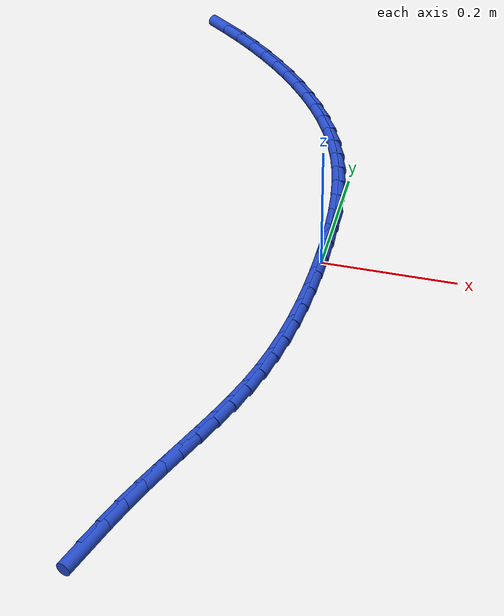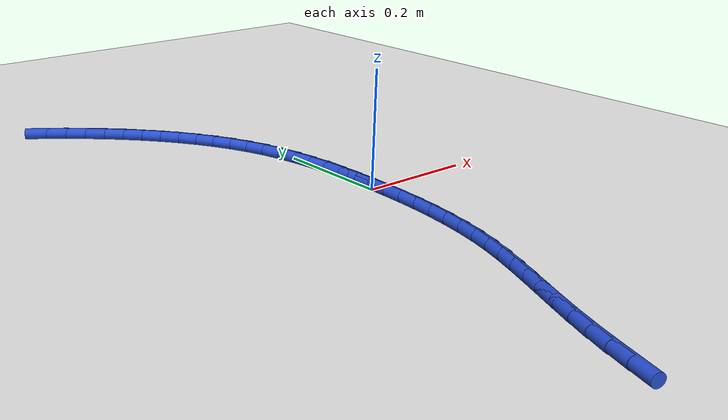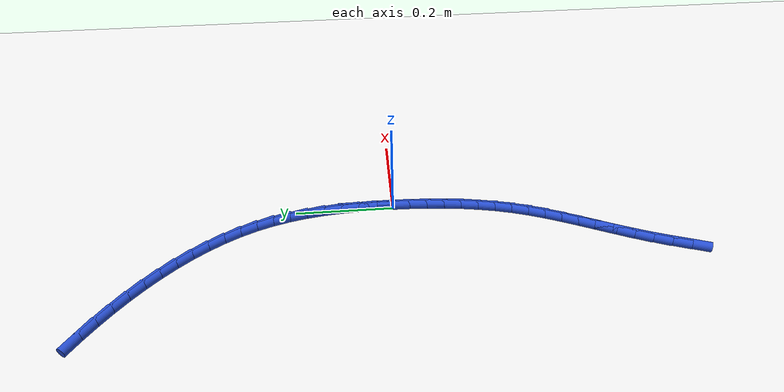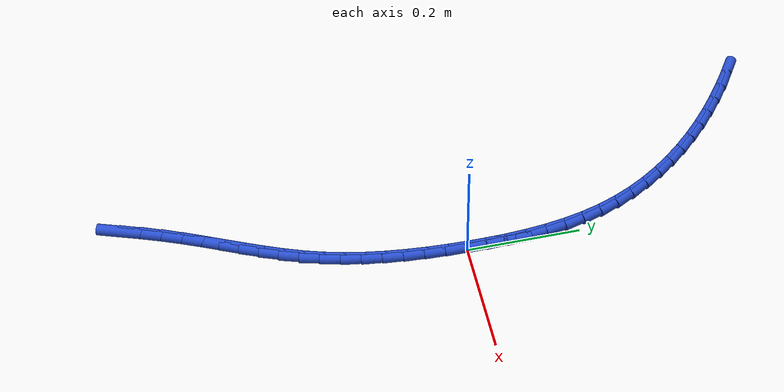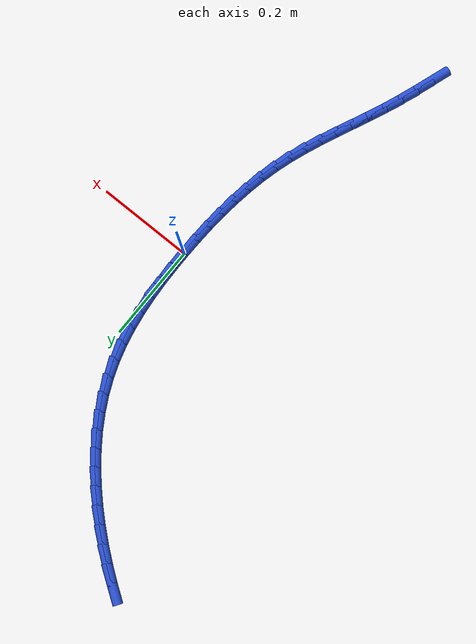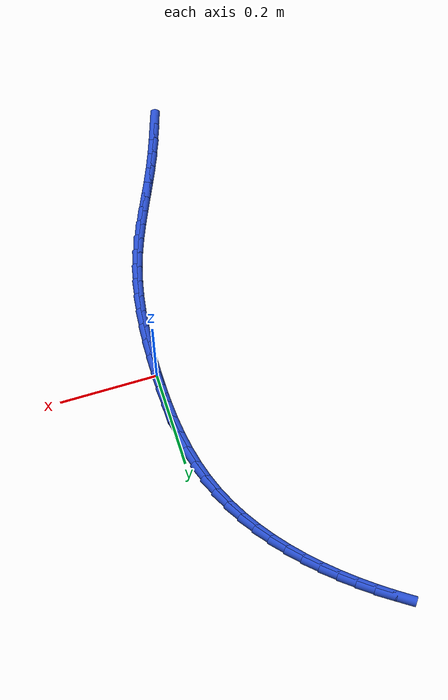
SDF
<sdf version="1.6">
 <world name="default">
  <model name="ground_plane">
   <static>1</static>
   <link name="link">
    <collision name="collision">
     <geometry><plane><normal>0 0 1</normal><size>100 100</size></plane></geometry>
     <surface><friction><ode><mu>100</mu><mu2>50</mu2></ode></friction></surface>
    </collision>
    <visual name="visual">
     <cast_shadows>0</cast_shadows>
     <geometry><plane><normal>0 0 1</normal><size>100 100</size></plane></geometry>
     <material>
      <script><uri>file://media/materials/scripts/gazebo.material</uri><name>Gazebo/WhiteGlow</name></script>
     </material>
    </visual>
   </link>
  </model>
  <model name="line">
   <link name="link_0">
    <pose>-1.9081958235744878e-17 1.3877787807814457e-17 0.01 0 1.57 -1.569150691324924</pose>
    <collision name="collision">
     <geometry><cylinder><radius>0.01</radius><length>0.08</length></cylinder></geometry>
    </collision>
    <visual name="visual">
     <material>
      <script><name>Gazebo/Blue</name><uri>file://media/materials/scripts/gazebo.material</uri></script>
     </material>
     <geometry><cylinder><radius>0.01</radius><length>0.08</length></cylinder></geometry>
    </visual>
   </link>
   <link name="link_1">
    <pose>-5.93490348842549e-05 0.03606447624182651 0.01 0 1.57 -1.5408540072571866</pose>
    <collision name="collision">
     <geometry><cylinder><radius>0.01</radius><length>0.08</length></cylinder></geometry>
    </collision>
    <visual name="visual">
     <material>
      <script><name>Gazebo/Blue</name><uri>file://media/materials/scripts/gazebo.material</uri></script>
     </material>
     <geometry><cylinder><radius>0.01</radius><length>0.08</length></cylinder></geometry>
    </visual>
   </link>
   <link name="link_2">
    <pose>-0.0011372189621542512 0.07205192831365248 0.01 0 1.57 -1.5059572041774045</pose>
    <collision name="collision">
     <geometry><cylinder><radius>0.01</radius><length>0.08</length></cylinder></geometry>
    </collision>
    <visual name="visual">
     <material>
      <script><name>Gazebo/Blue</name><uri>file://media/materials/scripts/gazebo.material</uri></script>
     </material>
     <geometry><cylinder><radius>0.01</radius><length>0.08</length></cylinder></geometry>
    </visual>
   </link>
   <link name="link_3">
    <pose>-0.003459952128827188 0.10782473260817574 0.01 0 1.57 -1.4640918692509997</pose>
    <collision name="collision">
     <geometry><cylinder><radius>0.01</radius><length>0.08</length></cylinder></geometry>
    </collision>
    <visual name="visual">
     <material>
      <script><name>Gazebo/Blue</name><uri>file://media/materials/scripts/gazebo.material</uri></script>
     </material>
     <geometry><cylinder><radius>0.01</radius><length>0.08</length></cylinder></geometry>
    </visual>
   </link>
   <link name="link_4">
    <pose>-0.007253890881920242 0.14324526551809405 0.01 0 1.57 -1.4148614530525538</pose>
    <collision name="collision">
     <geometry><cylinder><radius>0.01</radius><length>0.08</length></cylinder></geometry>
    </collision>
    <visual name="visual">
     <material>
      <script><name>Gazebo/Blue</name><uri>file://media/materials/scripts/gazebo.material</uri></script>
     </material>
     <geometry><cylinder><radius>0.01</radius><length>0.08</length></cylinder></geometry>
    </visual>
   </link>
   <link name="link_5">
    <pose>-0.012745377568450594 0.1781759034361053 0.01 0 1.57 -1.3579001338973513</pose>
    <collision name="collision">
     <geometry><cylinder><radius>0.01</radius><length>0.08</length></cylinder></geometry>
    </collision>
    <visual name="visual">
     <material>
      <script><name>Gazebo/Blue</name><uri>file://media/materials/scripts/gazebo.material</uri></script>
     </material>
     <geometry><cylinder><radius>0.01</radius><length>0.08</length></cylinder></geometry>
    </visual>
   </link>
   <link name="link_6">
    <pose>-0.020160754535435435 0.21247902275490732 0.01 0 1.57 -1.2929562519048643</pose>
    <collision name="collision">
     <geometry><cylinder><radius>0.01</radius><length>0.08</length></cylinder></geometry>
    </collision>
    <visual name="visual">
     <material>
      <script><name>Gazebo/Blue</name><uri>file://media/materials/scripts/gazebo.material</uri></script>
     </material>
     <geometry><cylinder><radius>0.01</radius><length>0.08</length></cylinder></geometry>
    </visual>
   </link>
   <link name="link_7">
    <pose>-0.02972636412989191 0.2460169998671978 0.01 0 1.57 -1.2204378760313082</pose>
    <collision name="collision">
     <geometry><cylinder><radius>0.01</radius><length>0.08</length></cylinder></geometry>
    </collision>
    <visual name="visual">
     <material>
      <script><name>Gazebo/Blue</name><uri>file://media/materials/scripts/gazebo.material</uri></script>
     </material>
     <geometry><cylinder><radius>0.01</radius><length>0.08</length></cylinder></geometry>
    </visual>
   </link>
   <link name="link_8">
    <pose>-0.041654253718880825 0.27865727076518504 0.01 0 1.57 -1.1468807612114151</pose>
    <collision name="collision">
     <geometry><cylinder><radius>0.01</radius><length>0.08</length></cylinder></geometry>
    </collision>
    <visual name="visual">
     <material>
      <script><name>Gazebo/Blue</name><uri>file://media/materials/scripts/gazebo.material</uri></script>
     </material>
     <geometry><cylinder><radius>0.01</radius><length>0.08</length></cylinder></geometry>
    </visual>
   </link>
   <link name="link_9">
    <pose>-0.05595181602787426 0.3103397073960449 0.01 0 1.57 -1.0773373245273545</pose>
    <collision name="collision">
     <geometry><cylinder><radius>0.01</radius><length>0.08</length></cylinder></geometry>
    </collision>
    <visual name="visual">
     <material>
      <script><name>Gazebo/Blue</name><uri>file://media/materials/scripts/gazebo.material</uri></script>
     </material>
     <geometry><cylinder><radius>0.01</radius><length>0.08</length></cylinder></geometry>
    </visual>
   </link>
   <link name="link_10">
    <pose>-0.07247349649613222 0.341058316236473 0.01 0 1.57 -1.012130288703366</pose>
    <collision name="collision">
     <geometry><cylinder><radius>0.01</radius><length>0.08</length></cylinder></geometry>
    </collision>
    <visual name="visual">
     <material>
      <script><name>Gazebo/Blue</name><uri>file://media/materials/scripts/gazebo.material</uri></script>
     </material>
     <geometry><cylinder><radius>0.01</radius><length>0.08</length></cylinder></geometry>
    </visual>
   </link>
   <link name="link_11">
    <pose>-0.09107006279133989 0.37080840548246186 0.01 0 1.57 -0.9512995171308045</pose>
    <collision name="collision">
     <geometry><cylinder><radius>0.01</radius><length>0.08</length></cylinder></geometry>
    </collision>
    <visual name="visual">
     <material>
      <script><name>Gazebo/Blue</name><uri>file://media/materials/scripts/gazebo.material</uri></script>
     </material>
     <geometry><cylinder><radius>0.01</radius><length>0.08</length></cylinder></geometry>
    </visual>
   </link>
   <link name="link_12">
    <pose>-0.1115922825811826 0.3995852833300044 0.01 0 1.57 -0.894752493359129</pose>
    <collision name="collision">
     <geometry><cylinder><radius>0.01</radius><length>0.08</length></cylinder></geometry>
    </collision>
    <visual name="visual">
     <material>
      <script><name>Gazebo/Blue</name><uri>file://media/materials/scripts/gazebo.material</uri></script>
     </material>
     <geometry><cylinder><radius>0.01</radius><length>0.08</length></cylinder></geometry>
    </visual>
   </link>
   <link name="link_13">
    <pose>-0.13389092353334547 0.42738425797509294 0.01 0 1.57 -0.8423020565817934</pose>
    <collision name="collision">
     <geometry><cylinder><radius>0.01</radius><length>0.08</length></cylinder></geometry>
    </collision>
    <visual name="visual">
     <material>
      <script><name>Gazebo/Blue</name><uri>file://media/materials/scripts/gazebo.material</uri></script>
     </material>
     <geometry><cylinder><radius>0.01</radius><length>0.08</length></cylinder></geometry>
    </visual>
   </link>
   <link name="link_14">
    <pose>-0.15781675331551376 0.4542006376137204 0.01 0 1.57 -0.7936994102972715</pose>
    <collision name="collision">
     <geometry><cylinder><radius>0.01</radius><length>0.08</length></cylinder></geometry>
    </collision>
    <visual name="visual">
     <material>
      <script><name>Gazebo/Blue</name><uri>file://media/materials/scripts/gazebo.material</uri></script>
     </material>
     <geometry><cylinder><radius>0.01</radius><length>0.08</length></cylinder></geometry>
    </visual>
   </link>
   <link name="link_15">
    <pose>-0.1832205395953728 0.48002973044187947 0.01 0 1.57 -0.7486605788193607</pose>
    <collision name="collision">
     <geometry><cylinder><radius>0.01</radius><length>0.08</length></cylinder></geometry>
    </collision>
    <visual name="visual">
     <material>
      <script><name>Gazebo/Blue</name><uri>file://media/materials/scripts/gazebo.material</uri></script>
     </material>
     <geometry><cylinder><radius>0.01</radius><length>0.08</length></cylinder></geometry>
    </visual>
   </link>
   <link name="link_16">
    <pose>-0.20995305004060769 0.5048668446555626 0.01 0 1.57 -0.7068861418542753</pose>
    <collision name="collision">
     <geometry><cylinder><radius>0.01</radius><length>0.08</length></cylinder></geometry>
    </collision>
    <visual name="visual">
     <material>
      <script><name>Gazebo/Blue</name><uri>file://media/materials/scripts/gazebo.material</uri></script>
     </material>
     <geometry><cylinder><radius>0.01</radius><length>0.08</length></cylinder></geometry>
    </visual>
   </link>
   <link name="link_17">
    <pose>-0.23786505231890365 0.5287072884507623 0.01 0 1.57 -0.668074988446682</pose>
    <collision name="collision">
     <geometry><cylinder><radius>0.01</radius><length>0.08</length></cylinder></geometry>
    </collision>
    <visual name="visual">
     <material>
      <script><name>Gazebo/Blue</name><uri>file://media/materials/scripts/gazebo.material</uri></script>
     </material>
     <geometry><cylinder><radius>0.01</radius><length>0.08</length></cylinder></geometry>
    </visual>
   </link>
   <link name="link_18">
    <pose>-0.266807314097946 0.5515463700234716 0.01 0 1.57 -0.6319331916607651</pose>
    <collision name="collision">
     <geometry><cylinder><radius>0.01</radius><length>0.08</length></cylinder></geometry>
    </collision>
    <visual name="visual">
     <material>
      <script><name>Gazebo/Blue</name><uri>file://media/materials/scripts/gazebo.material</uri></script>
     </material>
     <geometry><cylinder><radius>0.01</radius><length>0.08</length></cylinder></geometry>
    </visual>
   </link>
   <link name="link_19">
    <pose>-0.29663060304541994 0.5733793975696829 0.01 0 1.57 -0.5981791291737039</pose>
    <collision name="collision">
     <geometry><cylinder><radius>0.01</radius><length>0.08</length></cylinder></geometry>
    </collision>
    <visual name="visual">
     <material>
      <script><name>Gazebo/Blue</name><uri>file://media/materials/scripts/gazebo.material</uri></script>
     </material>
     <geometry><cylinder><radius>0.01</radius><length>0.08</length></cylinder></geometry>
    </visual>
   </link>
   <link name="link_223">
    <pose>-0.16189482674023287 -0.577753472587893 0.01 0 1.57 1.2386802877184837</pose>
    <collision name="collision">
     <geometry><cylinder><radius>0.01</radius><length>0.08</length></cylinder></geometry>
    </collision>
    <visual name="visual">
     <material>
      <script><name>Gazebo/Blue</name><uri>file://media/materials/scripts/gazebo.material</uri></script>
     </material>
     <geometry><cylinder><radius>0.01</radius><length>0.08</length></cylinder></geometry>
    </visual>
   </link>
   <link name="link_224">
    <pose>-0.14970263081702745 -0.5424025937167696 0.01 0 1.57 1.2187836564489156</pose>
    <collision name="collision">
     <geometry><cylinder><radius>0.01</radius><length>0.08</length></cylinder></geometry>
    </collision>
    <visual name="visual">
     <material>
      <script><name>Gazebo/Blue</name><uri>file://media/materials/scripts/gazebo.material</uri></script>
     </material>
     <geometry><cylinder><radius>0.01</radius><length>0.08</length></cylinder></geometry>
    </visual>
   </link>
   <link name="link_225">
    <pose>-0.1369287657236361 -0.5076258943485297 0.01 0 1.57 1.1887222061145388</pose>
    <collision name="collision">
     <geometry><cylinder><radius>0.01</radius><length>0.08</length></cylinder></geometry>
    </collision>
    <visual name="visual">
     <material>
      <script><name>Gazebo/Blue</name><uri>file://media/materials/scripts/gazebo.material</uri></script>
     </material>
     <geometry><cylinder><radius>0.01</radius><length>0.08</length></cylinder></geometry>
    </visual>
   </link>
   <link name="link_226">
    <pose>-0.1233005277651807 -0.4737095953103721 0.01 0 1.57 1.1628952703857232</pose>
    <collision name="collision">
     <geometry><cylinder><radius>0.01</radius><length>0.08</length></cylinder></geometry>
    </collision>
    <visual name="visual">
     <material>
      <script><name>Gazebo/Blue</name><uri>file://media/materials/scripts/gazebo.material</uri></script>
     </material>
     <geometry><cylinder><radius>0.01</radius><length>0.08</length></cylinder></geometry>
    </visual>
   </link>
   <link name="link_227">
    <pose>-0.10898910525994407 -0.4405918842228995 0.01 0 1.57 1.1488261639098358</pose>
    <collision name="collision">
     <geometry><cylinder><radius>0.01</radius><length>0.08</length></cylinder></geometry>
    </collision>
    <visual name="visual">
     <material>
      <script><name>Gazebo/Blue</name><uri>file://media/materials/scripts/gazebo.material</uri></script>
     </material>
     <geometry><cylinder><radius>0.01</radius><length>0.08</length></cylinder></geometry>
    </visual>
   </link>
   <link name="link_228">
    <pose>-0.09437751965690808 -0.40804486109631793 0.01 0 1.57 1.147037677470216</pose>
    <collision name="collision">
     <geometry><cylinder><radius>0.01</radius><length>0.08</length></cylinder></geometry>
    </collision>
    <visual name="visual">
     <material>
      <script><name>Gazebo/Blue</name><uri>file://media/materials/scripts/gazebo.material</uri></script>
     </material>
     <geometry><cylinder><radius>0.01</radius><length>0.08</length></cylinder></geometry>
    </visual>
   </link>
   <link name="link_229">
    <pose>-0.07985010085052696 -0.3758396000551223 0.01 0 1.57 1.1579024986462323</pose>
    <collision name="collision">
     <geometry><cylinder><radius>0.01</radius><length>0.08</length></cylinder></geometry>
    </collision>
    <visual name="visual">
     <material>
      <script><name>Gazebo/Blue</name><uri>file://media/materials/scripts/gazebo.material</uri></script>
     </material>
     <geometry><cylinder><radius>0.01</radius><length>0.08</length></cylinder></geometry>
    </visual>
   </link>
   <link name="link_230">
    <pose>-0.06579117873525456 -0.3437471752238069 0.01 0 1.57 1.1816830261613225</pose>
    <collision name="collision">
     <geometry><cylinder><radius>0.01</radius><length>0.08</length></cylinder></geometry>
    </collision>
    <visual name="visual">
     <material>
      <script><name>Gazebo/Blue</name><uri>file://media/materials/scripts/gazebo.material</uri></script>
     </material>
     <geometry><cylinder><radius>0.01</radius><length>0.08</length></cylinder></geometry>
    </visual>
   </link>
   <link name="link_231">
    <pose>-0.05258508320554585 -0.3115386607268682 0.01 0 1.57 1.2184678619212044</pose>
    <collision name="collision">
     <geometry><cylinder><radius>0.01</radius><length>0.08</length></cylinder></geometry>
    </collision>
    <visual name="visual">
     <material>
      <script><name>Gazebo/Blue</name><uri>file://media/materials/scripts/gazebo.material</uri></script>
     </material>
     <geometry><cylinder><radius>0.01</radius><length>0.08</length></cylinder></geometry>
    </visual>
   </link>
   <link name="link_232">
    <pose>-0.04061614415585471 -0.27898513068880076 0.01 0 1.57 1.2678767253729</pose>
    <collision name="collision">
     <geometry><cylinder><radius>0.01</radius><length>0.08</length></cylinder></geometry>
    </collision>
    <visual name="visual">
     <material>
      <script><name>Gazebo/Blue</name><uri>file://media/materials/scripts/gazebo.material</uri></script>
     </material>
     <geometry><cylinder><radius>0.01</radius><length>0.08</length></cylinder></geometry>
    </visual>
   </link>
   <link name="link_233">
    <pose>-0.03026351754661626 -0.2458607667497954 0.01 0 1.57 1.3223564069434588</pose>
    <collision name="collision">
     <geometry><cylinder><radius>0.01</radius><length>0.08</length></cylinder></geometry>
    </collision>
    <visual name="visual">
     <material>
      <script><name>Gazebo/Blue</name><uri>file://media/materials/scripts/gazebo.material</uri></script>
     </material>
     <geometry><cylinder><radius>0.01</radius><length>0.08</length></cylinder></geometry>
    </visual>
   </link>
   <link name="link_234">
    <pose>-0.02169119122595221 -0.21206898263607654 0.01 0 1.57 1.3722998600019587</pose>
    <collision name="collision">
     <geometry><cylinder><radius>0.01</radius><length>0.08</length></cylinder></geometry>
    </collision>
    <visual name="visual">
     <material>
      <script><name>Gazebo/Blue</name><uri>file://media/materials/scripts/gazebo.material</uri></script>
     </material>
     <geometry><cylinder><radius>0.01</radius><length>0.08</length></cylinder></geometry>
    </visual>
   </link>
   <link name="link_235">
    <pose>-0.014775242389906759 -0.17768611404524753 0.01 0 1.57 1.417122314017017</pose>
    <collision name="collision">
     <geometry><cylinder><radius>0.01</radius><length>0.08</length></cylinder></geometry>
    </collision>
    <visual name="visual">
     <material>
      <script><name>Gazebo/Blue</name><uri>file://media/materials/scripts/gazebo.material</uri></script>
     </material>
     <geometry><cylinder><radius>0.01</radius><length>0.08</length></cylinder></geometry>
    </visual>
   </link>
   <link name="link_236">
    <pose>-0.009371637881938235 -0.1428005751506099 0.01 0 1.57 1.4569754880002448</pose>
    <collision name="collision">
     <geometry><cylinder><radius>0.01</radius><length>0.08</length></cylinder></geometry>
    </collision>
    <visual name="visual">
     <material>
      <script><name>Gazebo/Blue</name><uri>file://media/materials/scripts/gazebo.material</uri></script>
     </material>
     <geometry><cylinder><radius>0.01</radius><length>0.08</length></cylinder></geometry>
    </visual>
   </link>
   <link name="link_237">
    <pose>-0.005336344545504968 -0.10750078012546506 0.01 0 1.57 1.492055185084724</pose>
    <collision name="collision">
     <geometry><cylinder><radius>0.01</radius><length>0.08</length></cylinder></geometry>
    </collision>
    <visual name="visual">
     <material>
      <script><name>Gazebo/Blue</name><uri>file://media/materials/scripts/gazebo.material</uri></script>
     </material>
     <geometry><cylinder><radius>0.01</radius><length>0.08</length></cylinder></geometry>
    </visual>
   </link>
   <link name="link_238">
    <pose>-0.002525329224065236 -0.07187514314311341 0.01 0 1.57 1.5225732134405239</pose>
    <collision name="collision">
     <geometry><cylinder><radius>0.01</radius><length>0.08</length></cylinder></geometry>
    </collision>
    <visual name="visual">
     <material>
      <script><name>Gazebo/Blue</name><uri>file://media/materials/scripts/gazebo.material</uri></script>
     </material>
     <geometry><cylinder><radius>0.01</radius><length>0.08</length></cylinder></geometry>
    </visual>
   </link>
   <link name="link_239">
    <pose>-0.0007945587610775056 -0.03601207837685826 0.01 0 1.57 1.5487362318874465</pose>
    <collision name="collision">
     <geometry><cylinder><radius>0.01</radius><length>0.08</length></cylinder></geometry>
    </collision>
    <visual name="visual">
     <material>
      <script><name>Gazebo/Blue</name><uri>file://media/materials/scripts/gazebo.material</uri></script>
     </material>
     <geometry><cylinder><radius>0.01</radius><length>0.08</length></cylinder></geometry>
    </visual>
   </link>
   <link name="link_240">
    <pose>-2.0816681711721685e-17 -6.245004513516506e-17 0.01 0 1.57 1.570730342902109</pose>
    <collision name="collision">
     <geometry><cylinder><radius>0.01</radius><length>0.08</length></cylinder></geometry>
    </collision>
    <visual name="visual">
     <material>
      <script><name>Gazebo/Blue</name><uri>file://media/materials/scripts/gazebo.material</uri></script>
     </material>
     <geometry><cylinder><radius>0.01</radius><length>0.08</length></cylinder></geometry>
    </visual>
   </link>
   <link name="link_241">
    <pose>2.3802157088884286e-06 0.036072677814159786 0.01 0 1.57 -1.5528826480852058</pose>
    <collision name="collision">
     <geometry><cylinder><radius>0.01</radius><length>0.08</length></cylinder></geometry>
    </collision>
    <visual name="visual">
     <material>
      <script><name>Gazebo/Blue</name><uri>file://media/materials/scripts/gazebo.material</uri></script>
     </material>
     <geometry><cylinder><radius>0.01</radius><length>0.08</length></cylinder></geometry>
    </visual>
   </link>
   <link name="link_242">
    <pose>-0.0006433849574091102 0.07211754089231984 0.01 0 1.57 -1.5618752254760977</pose>
    <collision name="collision">
     <geometry><cylinder><radius>0.01</radius><length>0.08</length></cylinder></geometry>
    </collision>
    <visual name="visual">
     <material>
      <script><name>Gazebo/Blue</name><uri>file://media/materials/scripts/gazebo.material</uri></script>
     </material>
     <geometry><cylinder><radius>0.01</radius><length>0.08</length></cylinder></geometry>
    </visual>
   </link>
  </model>
 </world>
</sdf>
